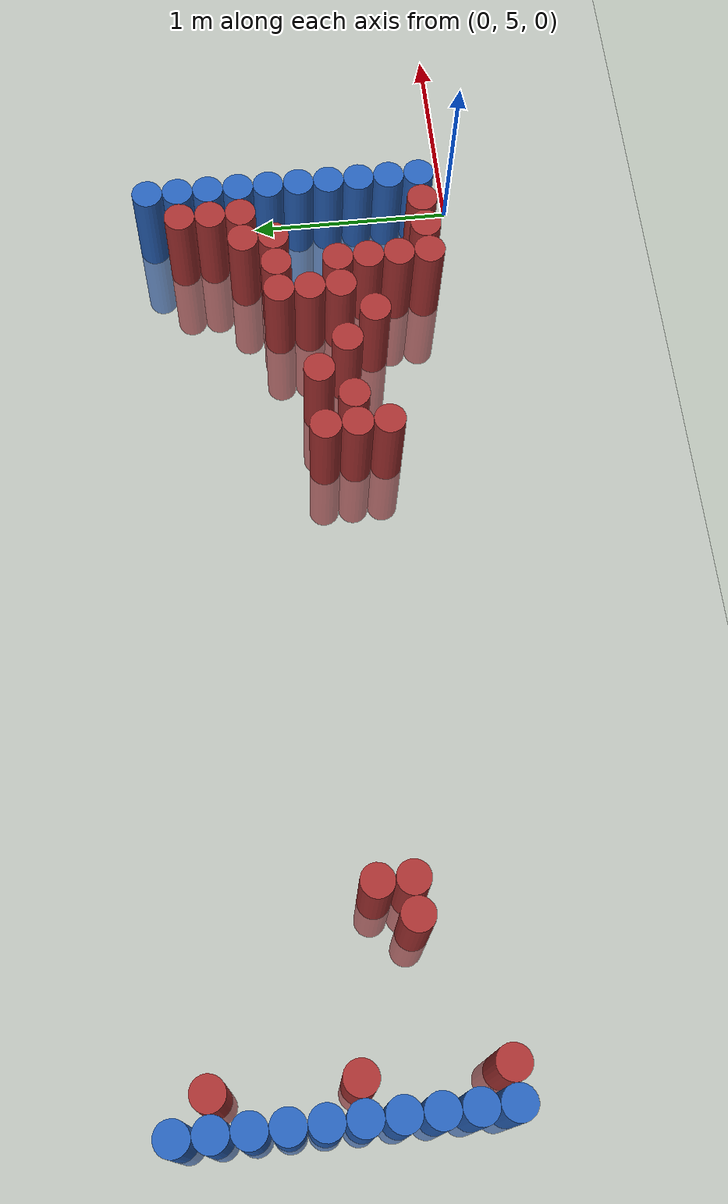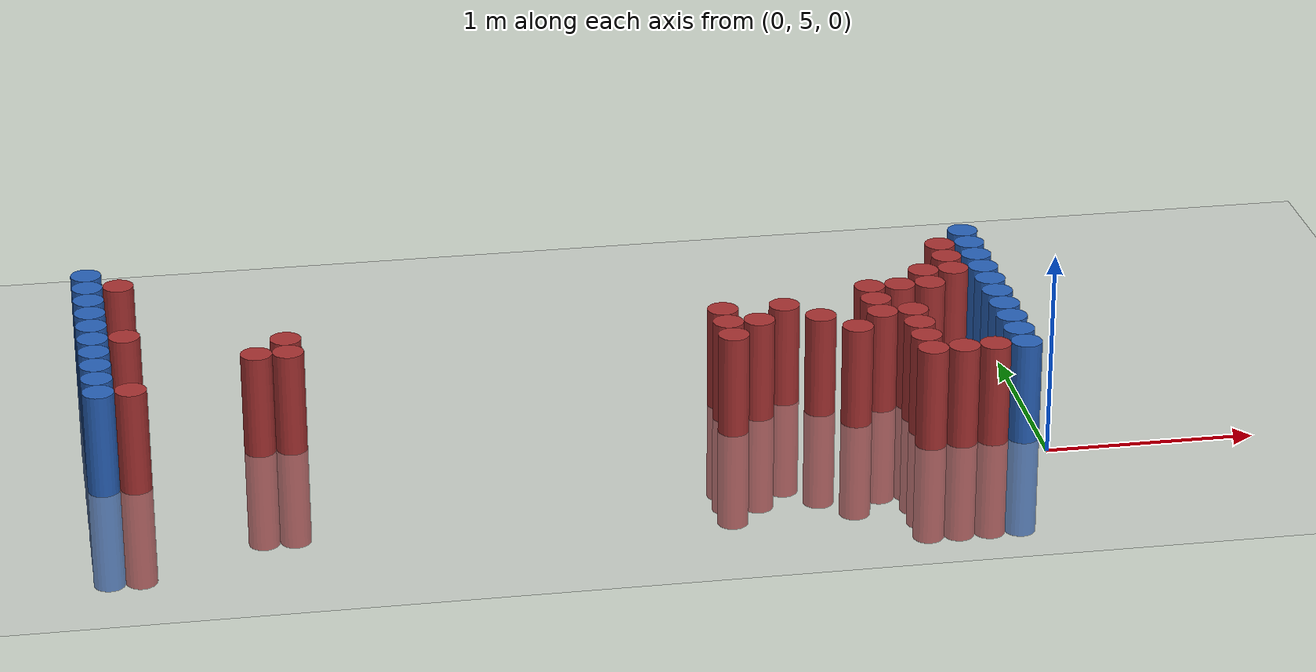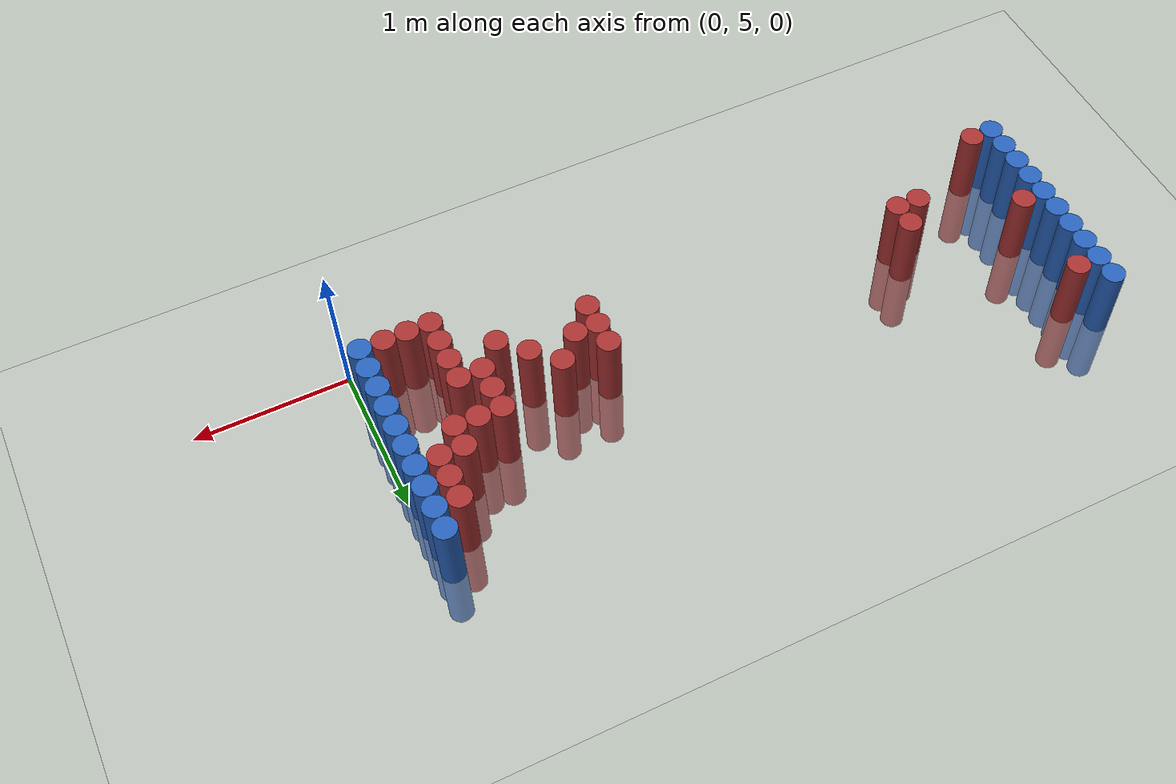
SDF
<sdf version="1.6">
 <world name="default">
  <model name="ground_plane">
   <static>1</static>
   <link name="link">
    <collision name="collision">
     <geometry><plane><normal>0 0 1</normal><size>100 100</size></plane></geometry>
     <surface><friction><ode><mu>100</mu><mu2>50</mu2></ode></friction></surface>
    </collision>
    <visual name="visual">
     <cast_shadows>0</cast_shadows>
     <geometry><plane><normal>0 0 1</normal><size>100 100</size></plane></geometry>
     <material>
      <script><uri>file://media/materials/scripts/gazebo.material</uri><name>Gazebo/Grey</name></script>
     </material>
    </visual>
   </link>
  </model>
  <model name="unit_cylinder_97">
   <static>1</static>
   <pose>-4.425000 5.325000 0.000000 0.000000 0.000000 0.000000</pose>
   <link name="link">
    <inertial>
     <mass>1</mass>
     <inertia><ixx>0.145833</ixx><ixy>0</ixy><ixz>0</ixz><iyy>0.145833</iyy><iyz>0</iyz><izz>0.125</izz></inertia>
    </inertial>
    <collision name="collision">
     <geometry><cylinder><radius>0.075000</radius><length>1</length></cylinder></geometry>
    </collision>
    <visual name="visual">
     <geometry><cylinder><radius>0.075000</radius><length>1</length></cylinder></geometry>
     <material>
      <ambient>0.152000 0.379000 0.720000 1</ambient>
      <diffuse>0.152000 0.379000 0.720000 1</diffuse>
     </material>
     <material>
      <script><name>Gazebo/Grey</name><uri>file://media/materials/scripts/gazebo.material</uri></script>
     </material>
    </visual>
   </link>
  </model>
  <model name="unit_cylinder_98">
   <static>1</static>
   <pose>-4.425000 5.475000 0.000000 0.000000 0.000000 0.000000</pose>
   <link name="link">
    <inertial>
     <mass>1</mass>
     <inertia><ixx>0.145833</ixx><ixy>0</ixy><ixz>0</ixz><iyy>0.145833</iyy><iyz>0</iyz><izz>0.125</izz></inertia>
    </inertial>
    <collision name="collision">
     <geometry><cylinder><radius>0.075000</radius><length>1</length></cylinder></geometry>
    </collision>
    <visual name="visual">
     <geometry><cylinder><radius>0.075000</radius><length>1</length></cylinder></geometry>
     <material>
      <ambient>0.152000 0.379000 0.720000 1</ambient>
      <diffuse>0.152000 0.379000 0.720000 1</diffuse>
     </material>
     <material>
      <script><name>Gazebo/Grey</name><uri>file://media/materials/scripts/gazebo.material</uri></script>
     </material>
    </visual>
   </link>
  </model>
  <model name="unit_cylinder_99">
   <static>1</static>
   <pose>-4.425000 5.625000 0.000000 0.000000 0.000000 0.000000</pose>
   <link name="link">
    <inertial>
     <mass>1</mass>
     <inertia><ixx>0.145833</ixx><ixy>0</ixy><ixz>0</ixz><iyy>0.145833</iyy><iyz>0</iyz><izz>0.125</izz></inertia>
    </inertial>
    <collision name="collision">
     <geometry><cylinder><radius>0.075000</radius><length>1</length></cylinder></geometry>
    </collision>
    <visual name="visual">
     <geometry><cylinder><radius>0.075000</radius><length>1</length></cylinder></geometry>
     <material>
      <ambient>0.152000 0.379000 0.720000 1</ambient>
      <diffuse>0.152000 0.379000 0.720000 1</diffuse>
     </material>
     <material>
      <script><name>Gazebo/Grey</name><uri>file://media/materials/scripts/gazebo.material</uri></script>
     </material>
    </visual>
   </link>
  </model>
  <model name="unit_cylinder_100">
   <static>1</static>
   <pose>-4.425000 5.775000 0.000000 0.000000 0.000000 0.000000</pose>
   <link name="link">
    <inertial>
     <mass>1</mass>
     <inertia><ixx>0.145833</ixx><ixy>0</ixy><ixz>0</ixz><iyy>0.145833</iyy><iyz>0</iyz><izz>0.125</izz></inertia>
    </inertial>
    <collision name="collision">
     <geometry><cylinder><radius>0.075000</radius><length>1</length></cylinder></geometry>
    </collision>
    <visual name="visual">
     <geometry><cylinder><radius>0.075000</radius><length>1</length></cylinder></geometry>
     <material>
      <ambient>0.152000 0.379000 0.720000 1</ambient>
      <diffuse>0.152000 0.379000 0.720000 1</diffuse>
     </material>
     <material>
      <script><name>Gazebo/Grey</name><uri>file://media/materials/scripts/gazebo.material</uri></script>
     </material>
    </visual>
   </link>
  </model>
  <model name="unit_cylinder_101">
   <static>1</static>
   <pose>-4.425000 5.925000 0.000000 0.000000 0.000000 0.000000</pose>
   <link name="link">
    <inertial>
     <mass>1</mass>
     <inertia><ixx>0.145833</ixx><ixy>0</ixy><ixz>0</ixz><iyy>0.145833</iyy><iyz>0</iyz><izz>0.125</izz></inertia>
    </inertial>
    <collision name="collision">
     <geometry><cylinder><radius>0.075000</radius><length>1</length></cylinder></geometry>
    </collision>
    <visual name="visual">
     <geometry><cylinder><radius>0.075000</radius><length>1</length></cylinder></geometry>
     <material>
      <ambient>0.152000 0.379000 0.720000 1</ambient>
      <diffuse>0.152000 0.379000 0.720000 1</diffuse>
     </material>
     <material>
      <script><name>Gazebo/Grey</name><uri>file://media/materials/scripts/gazebo.material</uri></script>
     </material>
    </visual>
   </link>
  </model>
  <model name="unit_cylinder_102">
   <static>1</static>
   <pose>-4.425000 6.075000 0.000000 0.000000 0.000000 0.000000</pose>
   <link name="link">
    <inertial>
     <mass>1</mass>
     <inertia><ixx>0.145833</ixx><ixy>0</ixy><ixz>0</ixz><iyy>0.145833</iyy><iyz>0</iyz><izz>0.125</izz></inertia>
    </inertial>
    <collision name="collision">
     <geometry><cylinder><radius>0.075000</radius><length>1</length></cylinder></geometry>
    </collision>
    <visual name="visual">
     <geometry><cylinder><radius>0.075000</radius><length>1</length></cylinder></geometry>
     <material>
      <ambient>0.152000 0.379000 0.720000 1</ambient>
      <diffuse>0.152000 0.379000 0.720000 1</diffuse>
     </material>
     <material>
      <script><name>Gazebo/Grey</name><uri>file://media/materials/scripts/gazebo.material</uri></script>
     </material>
    </visual>
   </link>
  </model>
  <model name="unit_cylinder_103">
   <static>1</static>
   <pose>-4.425000 6.225000 0.000000 0.000000 0.000000 0.000000</pose>
   <link name="link">
    <inertial>
     <mass>1</mass>
     <inertia><ixx>0.145833</ixx><ixy>0</ixy><ixz>0</ixz><iyy>0.145833</iyy><iyz>0</iyz><izz>0.125</izz></inertia>
    </inertial>
    <collision name="collision">
     <geometry><cylinder><radius>0.075000</radius><length>1</length></cylinder></geometry>
    </collision>
    <visual name="visual">
     <geometry><cylinder><radius>0.075000</radius><length>1</length></cylinder></geometry>
     <material>
      <ambient>0.152000 0.379000 0.720000 1</ambient>
      <diffuse>0.152000 0.379000 0.720000 1</diffuse>
     </material>
     <material>
      <script><name>Gazebo/Grey</name><uri>file://media/materials/scripts/gazebo.material</uri></script>
     </material>
    </visual>
   </link>
  </model>
  <model name="unit_cylinder_104">
   <static>1</static>
   <pose>-4.425000 6.375000 0.000000 0.000000 0.000000 0.000000</pose>
   <link name="link">
    <inertial>
     <mass>1</mass>
     <inertia><ixx>0.145833</ixx><ixy>0</ixy><ixz>0</ixz><iyy>0.145833</iyy><iyz>0</iyz><izz>0.125</izz></inertia>
    </inertial>
    <collision name="collision">
     <geometry><cylinder><radius>0.075000</radius><length>1</length></cylinder></geometry>
    </collision>
    <visual name="visual">
     <geometry><cylinder><radius>0.075000</radius><length>1</length></cylinder></geometry>
     <material>
      <ambient>0.152000 0.379000 0.720000 1</ambient>
      <diffuse>0.152000 0.379000 0.720000 1</diffuse>
     </material>
     <material>
      <script><name>Gazebo/Grey</name><uri>file://media/materials/scripts/gazebo.material</uri></script>
     </material>
    </visual>
   </link>
  </model>
  <model name="unit_cylinder_105">
   <static>1</static>
   <pose>-4.425000 6.525000 0.000000 0.000000 0.000000 0.000000</pose>
   <link name="link">
    <inertial>
     <mass>1</mass>
     <inertia><ixx>0.145833</ixx><ixy>0</ixy><ixz>0</ixz><iyy>0.145833</iyy><iyz>0</iyz><izz>0.125</izz></inertia>
    </inertial>
    <collision name="collision">
     <geometry><cylinder><radius>0.075000</radius><length>1</length></cylinder></geometry>
    </collision>
    <visual name="visual">
     <geometry><cylinder><radius>0.075000</radius><length>1</length></cylinder></geometry>
     <material>
      <ambient>0.152000 0.379000 0.720000 1</ambient>
      <diffuse>0.152000 0.379000 0.720000 1</diffuse>
     </material>
     <material>
      <script><name>Gazebo/Grey</name><uri>file://media/materials/scripts/gazebo.material</uri></script>
     </material>
    </visual>
   </link>
  </model>
  <model name="unit_cylinder_106">
   <static>1</static>
   <pose>-4.425000 6.675000 0.000000 0.000000 0.000000 0.000000</pose>
   <link name="link">
    <inertial>
     <mass>1</mass>
     <inertia><ixx>0.145833</ixx><ixy>0</ixy><ixz>0</ixz><iyy>0.145833</iyy><iyz>0</iyz><izz>0.125</izz></inertia>
    </inertial>
    <collision name="collision">
     <geometry><cylinder><radius>0.075000</radius><length>1</length></cylinder></geometry>
    </collision>
    <visual name="visual">
     <geometry><cylinder><radius>0.075000</radius><length>1</length></cylinder></geometry>
     <material>
      <ambient>0.152000 0.379000 0.720000 1</ambient>
      <diffuse>0.152000 0.379000 0.720000 1</diffuse>
     </material>
     <material>
      <script><name>Gazebo/Grey</name><uri>file://media/materials/scripts/gazebo.material</uri></script>
     </material>
    </visual>
   </link>
  </model>
  <model name="unit_cylinder_126">
   <static>1</static>
   <pose>-4.275000 5.325000 0.000000 0.000000 0.000000 0.000000</pose>
   <link name="link">
    <inertial>
     <mass>1</mass>
     <inertia><ixx>0.145833</ixx><ixy>0</ixy><ixz>0</ixz><iyy>0.145833</iyy><iyz>0</iyz><izz>0.125</izz></inertia>
    </inertial>
    <collision name="collision">
     <geometry><cylinder><radius>0.075000</radius><length>1</length></cylinder></geometry>
    </collision>
    <visual name="visual">
     <geometry><cylinder><radius>0.075000</radius><length>1</length></cylinder></geometry>
     <material>
      <ambient>0.648000 0.192000 0.192000 1</ambient>
      <diffuse>0.648000 0.192000 0.192000 1</diffuse>
     </material>
     <material>
      <script><name>Gazebo/Grey</name><uri>file://media/materials/scripts/gazebo.material</uri></script>
     </material>
    </visual>
   </link>
  </model>
  <model name="unit_cylinder_127">
   <static>1</static>
   <pose>-4.275000 5.925000 0.000000 0.000000 0.000000 0.000000</pose>
   <link name="link">
    <inertial>
     <mass>1</mass>
     <inertia><ixx>0.145833</ixx><ixy>0</ixy><ixz>0</ixz><iyy>0.145833</iyy><iyz>0</iyz><izz>0.125</izz></inertia>
    </inertial>
    <collision name="collision">
     <geometry><cylinder><radius>0.075000</radius><length>1</length></cylinder></geometry>
    </collision>
    <visual name="visual">
     <geometry><cylinder><radius>0.075000</radius><length>1</length></cylinder></geometry>
     <material>
      <ambient>0.648000 0.192000 0.192000 1</ambient>
      <diffuse>0.648000 0.192000 0.192000 1</diffuse>
     </material>
     <material>
      <script><name>Gazebo/Grey</name><uri>file://media/materials/scripts/gazebo.material</uri></script>
     </material>
    </visual>
   </link>
  </model>
  <model name="unit_cylinder_128">
   <static>1</static>
   <pose>-4.275000 6.525000 0.000000 0.000000 0.000000 0.000000</pose>
   <link name="link">
    <inertial>
     <mass>1</mass>
     <inertia><ixx>0.145833</ixx><ixy>0</ixy><ixz>0</ixz><iyy>0.145833</iyy><iyz>0</iyz><izz>0.125</izz></inertia>
    </inertial>
    <collision name="collision">
     <geometry><cylinder><radius>0.075000</radius><length>1</length></cylinder></geometry>
    </collision>
    <visual name="visual">
     <geometry><cylinder><radius>0.075000</radius><length>1</length></cylinder></geometry>
     <material>
      <ambient>0.648000 0.192000 0.192000 1</ambient>
      <diffuse>0.648000 0.192000 0.192000 1</diffuse>
     </material>
     <material>
      <script><name>Gazebo/Grey</name><uri>file://media/materials/scripts/gazebo.material</uri></script>
     </material>
    </visual>
   </link>
  </model>
  <model name="unit_cylinder_164">
   <static>1</static>
   <pose>-3.675000 5.625000 0.000000 0.000000 0.000000 0.000000</pose>
   <link name="link">
    <inertial>
     <mass>1</mass>
     <inertia><ixx>0.145833</ixx><ixy>0</ixy><ixz>0</ixz><iyy>0.145833</iyy><iyz>0</iyz><izz>0.125</izz></inertia>
    </inertial>
    <collision name="collision">
     <geometry><cylinder><radius>0.075000</radius><length>1</length></cylinder></geometry>
    </collision>
    <visual name="visual">
     <geometry><cylinder><radius>0.075000</radius><length>1</length></cylinder></geometry>
     <material>
      <ambient>0.648000 0.192000 0.192000 1</ambient>
      <diffuse>0.648000 0.192000 0.192000 1</diffuse>
     </material>
     <material>
      <script><name>Gazebo/Grey</name><uri>file://media/materials/scripts/gazebo.material</uri></script>
     </material>
    </visual>
   </link>
  </model>
  <model name="unit_cylinder_171">
   <static>1</static>
   <pose>-3.525000 5.625000 0.000000 0.000000 0.000000 0.000000</pose>
   <link name="link">
    <inertial>
     <mass>1</mass>
     <inertia><ixx>0.145833</ixx><ixy>0</ixy><ixz>0</ixz><iyy>0.145833</iyy><iyz>0</iyz><izz>0.125</izz></inertia>
    </inertial>
    <collision name="collision">
     <geometry><cylinder><radius>0.075000</radius><length>1</length></cylinder></geometry>
    </collision>
    <visual name="visual">
     <geometry><cylinder><radius>0.075000</radius><length>1</length></cylinder></geometry>
     <material>
      <ambient>0.648000 0.192000 0.192000 1</ambient>
      <diffuse>0.648000 0.192000 0.192000 1</diffuse>
     </material>
     <material>
      <script><name>Gazebo/Grey</name><uri>file://media/materials/scripts/gazebo.material</uri></script>
     </material>
    </visual>
   </link>
  </model>
  <model name="unit_cylinder_172">
   <static>1</static>
   <pose>-3.525000 5.775000 0.000000 0.000000 0.000000 0.000000</pose>
   <link name="link">
    <inertial>
     <mass>1</mass>
     <inertia><ixx>0.145833</ixx><ixy>0</ixy><ixz>0</ixz><iyy>0.145833</iyy><iyz>0</iyz><izz>0.125</izz></inertia>
    </inertial>
    <collision name="collision">
     <geometry><cylinder><radius>0.075000</radius><length>1</length></cylinder></geometry>
    </collision>
    <visual name="visual">
     <geometry><cylinder><radius>0.075000</radius><length>1</length></cylinder></geometry>
     <material>
      <ambient>0.648000 0.192000 0.192000 1</ambient>
      <diffuse>0.648000 0.192000 0.192000 1</diffuse>
     </material>
     <material>
      <script><name>Gazebo/Grey</name><uri>file://media/materials/scripts/gazebo.material</uri></script>
     </material>
    </visual>
   </link>
  </model>
  <model name="unit_cylinder_201">
   <static>1</static>
   <pose>-1.425000 5.475000 0.000000 0.000000 0.000000 0.000000</pose>
   <link name="link">
    <inertial>
     <mass>1</mass>
     <inertia><ixx>0.145833</ixx><ixy>0</ixy><ixz>0</ixz><iyy>0.145833</iyy><iyz>0</iyz><izz>0.125</izz></inertia>
    </inertial>
    <collision name="collision">
     <geometry><cylinder><radius>0.075000</radius><length>1</length></cylinder></geometry>
    </collision>
    <visual name="visual">
     <geometry><cylinder><radius>0.075000</radius><length>1</length></cylinder></geometry>
     <material>
      <ambient>0.648000 0.192000 0.192000 1</ambient>
      <diffuse>0.648000 0.192000 0.192000 1</diffuse>
     </material>
     <material>
      <script><name>Gazebo/Grey</name><uri>file://media/materials/scripts/gazebo.material</uri></script>
     </material>
    </visual>
   </link>
  </model>
  <model name="unit_cylinder_202">
   <static>1</static>
   <pose>-1.425000 5.625000 0.000000 0.000000 0.000000 0.000000</pose>
   <link name="link">
    <inertial>
     <mass>1</mass>
     <inertia><ixx>0.145833</ixx><ixy>0</ixy><ixz>0</ixz><iyy>0.145833</iyy><iyz>0</iyz><izz>0.125</izz></inertia>
    </inertial>
    <collision name="collision">
     <geometry><cylinder><radius>0.075000</radius><length>1</length></cylinder></geometry>
    </collision>
    <visual name="visual">
     <geometry><cylinder><radius>0.075000</radius><length>1</length></cylinder></geometry>
     <material>
      <ambient>0.648000 0.192000 0.192000 1</ambient>
      <diffuse>0.648000 0.192000 0.192000 1</diffuse>
     </material>
     <material>
      <script><name>Gazebo/Grey</name><uri>file://media/materials/scripts/gazebo.material</uri></script>
     </material>
    </visual>
   </link>
  </model>
  <model name="unit_cylinder_203">
   <static>1</static>
   <pose>-1.425000 5.775000 0.000000 0.000000 0.000000 0.000000</pose>
   <link name="link">
    <inertial>
     <mass>1</mass>
     <inertia><ixx>0.145833</ixx><ixy>0</ixy><ixz>0</ixz><iyy>0.145833</iyy><iyz>0</iyz><izz>0.125</izz></inertia>
    </inertial>
    <collision name="collision">
     <geometry><cylinder><radius>0.075000</radius><length>1</length></cylinder></geometry>
    </collision>
    <visual name="visual">
     <geometry><cylinder><radius>0.075000</radius><length>1</length></cylinder></geometry>
     <material>
      <ambient>0.648000 0.192000 0.192000 1</ambient>
      <diffuse>0.648000 0.192000 0.192000 1</diffuse>
     </material>
     <material>
      <script><name>Gazebo/Grey</name><uri>file://media/materials/scripts/gazebo.material</uri></script>
     </material>
    </visual>
   </link>
  </model>
  <model name="unit_cylinder_205">
   <static>1</static>
   <pose>-1.275000 5.625000 0.000000 0.000000 0.000000 0.000000</pose>
   <link name="link">
    <inertial>
     <mass>1</mass>
     <inertia><ixx>0.145833</ixx><ixy>0</ixy><ixz>0</ixz><iyy>0.145833</iyy><iyz>0</iyz><izz>0.125</izz></inertia>
    </inertial>
    <collision name="collision">
     <geometry><cylinder><radius>0.075000</radius><length>1</length></cylinder></geometry>
    </collision>
    <visual name="visual">
     <geometry><cylinder><radius>0.075000</radius><length>1</length></cylinder></geometry>
     <material>
      <ambient>0.648000 0.192000 0.192000 1</ambient>
      <diffuse>0.648000 0.192000 0.192000 1</diffuse>
     </material>
     <material>
      <script><name>Gazebo/Grey</name><uri>file://media/materials/scripts/gazebo.material</uri></script>
     </material>
    </visual>
   </link>
  </model>
  <model name="unit_cylinder_208">
   <static>1</static>
   <pose>-1.125000 5.775000 0.000000 0.000000 0.000000 0.000000</pose>
   <link name="link">
    <inertial>
     <mass>1</mass>
     <inertia><ixx>0.145833</ixx><ixy>0</ixy><ixz>0</ixz><iyy>0.145833</iyy><iyz>0</iyz><izz>0.125</izz></inertia>
    </inertial>
    <collision name="collision">
     <geometry><cylinder><radius>0.075000</radius><length>1</length></cylinder></geometry>
    </collision>
    <visual name="visual">
     <geometry><cylinder><radius>0.075000</radius><length>1</length></cylinder></geometry>
     <material>
      <ambient>0.648000 0.192000 0.192000 1</ambient>
      <diffuse>0.648000 0.192000 0.192000 1</diffuse>
     </material>
     <material>
      <script><name>Gazebo/Grey</name><uri>file://media/materials/scripts/gazebo.material</uri></script>
     </material>
    </visual>
   </link>
  </model>
  <model name="unit_cylinder_212">
   <static>1</static>
   <pose>-0.975000 5.625000 0.000000 0.000000 0.000000 0.000000</pose>
   <link name="link">
    <inertial>
     <mass>1</mass>
     <inertia><ixx>0.145833</ixx><ixy>0</ixy><ixz>0</ixz><iyy>0.145833</iyy><iyz>0</iyz><izz>0.125</izz></inertia>
    </inertial>
    <collision name="collision">
     <geometry><cylinder><radius>0.075000</radius><length>1</length></cylinder></geometry>
    </collision>
    <visual name="visual">
     <geometry><cylinder><radius>0.075000</radius><length>1</length></cylinder></geometry>
     <material>
      <ambient>0.648000 0.192000 0.192000 1</ambient>
      <diffuse>0.648000 0.192000 0.192000 1</diffuse>
     </material>
     <material>
      <script><name>Gazebo/Grey</name><uri>file://media/materials/scripts/gazebo.material</uri></script>
     </material>
    </visual>
   </link>
  </model>
  <model name="unit_cylinder_216">
   <static>1</static>
   <pose>-0.825000 5.475000 0.000000 0.000000 0.000000 0.000000</pose>
   <link name="link">
    <inertial>
     <mass>1</mass>
     <inertia><ixx>0.145833</ixx><ixy>0</ixy><ixz>0</ixz><iyy>0.145833</iyy><iyz>0</iyz><izz>0.125</izz></inertia>
    </inertial>
    <collision name="collision">
     <geometry><cylinder><radius>0.075000</radius><length>1</length></cylinder></geometry>
    </collision>
    <visual name="visual">
     <geometry><cylinder><radius>0.075000</radius><length>1</length></cylinder></geometry>
     <material>
      <ambient>0.648000 0.192000 0.192000 1</ambient>
      <diffuse>0.648000 0.192000 0.192000 1</diffuse>
     </material>
     <material>
      <script><name>Gazebo/Grey</name><uri>file://media/materials/scripts/gazebo.material</uri></script>
     </material>
    </visual>
   </link>
  </model>
  <model name="unit_cylinder_219">
   <static>1</static>
   <pose>-0.675000 5.625000 0.000000 0.000000 0.000000 0.000000</pose>
   <link name="link">
    <inertial>
     <mass>1</mass>
     <inertia><ixx>0.145833</ixx><ixy>0</ixy><ixz>0</ixz><iyy>0.145833</iyy><iyz>0</iyz><izz>0.125</izz></inertia>
    </inertial>
    <collision name="collision">
     <geometry><cylinder><radius>0.075000</radius><length>1</length></cylinder></geometry>
    </collision>
    <visual name="visual">
     <geometry><cylinder><radius>0.075000</radius><length>1</length></cylinder></geometry>
     <material>
      <ambient>0.648000 0.192000 0.192000 1</ambient>
      <diffuse>0.648000 0.192000 0.192000 1</diffuse>
     </material>
     <material>
      <script><name>Gazebo/Grey</name><uri>file://media/materials/scripts/gazebo.material</uri></script>
     </material>
    </visual>
   </link>
  </model>
  <model name="unit_cylinder_220">
   <static>1</static>
   <pose>-0.675000 5.775000 0.000000 0.000000 0.000000 0.000000</pose>
   <link name="link">
    <inertial>
     <mass>1</mass>
     <inertia><ixx>0.145833</ixx><ixy>0</ixy><ixz>0</ixz><iyy>0.145833</iyy><iyz>0</iyz><izz>0.125</izz></inertia>
    </inertial>
    <collision name="collision">
     <geometry><cylinder><radius>0.075000</radius><length>1</length></cylinder></geometry>
    </collision>
    <visual name="visual">
     <geometry><cylinder><radius>0.075000</radius><length>1</length></cylinder></geometry>
     <material>
      <ambient>0.648000 0.192000 0.192000 1</ambient>
      <diffuse>0.648000 0.192000 0.192000 1</diffuse>
     </material>
     <material>
      <script><name>Gazebo/Grey</name><uri>file://media/materials/scripts/gazebo.material</uri></script>
     </material>
    </visual>
   </link>
  </model>
  <model name="unit_cylinder_221">
   <static>1</static>
   <pose>-0.675000 5.925000 0.000000 0.000000 0.000000 0.000000</pose>
   <link name="link">
    <inertial>
     <mass>1</mass>
     <inertia><ixx>0.145833</ixx><ixy>0</ixy><ixz>0</ixz><iyy>0.145833</iyy><iyz>0</iyz><izz>0.125</izz></inertia>
    </inertial>
    <collision name="collision">
     <geometry><cylinder><radius>0.075000</radius><length>1</length></cylinder></geometry>
    </collision>
    <visual name="visual">
     <geometry><cylinder><radius>0.075000</radius><length>1</length></cylinder></geometry>
     <material>
      <ambient>0.648000 0.192000 0.192000 1</ambient>
      <diffuse>0.648000 0.192000 0.192000 1</diffuse>
     </material>
     <material>
      <script><name>Gazebo/Grey</name><uri>file://media/materials/scripts/gazebo.material</uri></script>
     </material>
    </visual>
   </link>
  </model>
  <model name="unit_cylinder_224">
   <static>1</static>
   <pose>-0.525000 5.175000 0.000000 0.000000 0.000000 0.000000</pose>
   <link name="link">
    <inertial>
     <mass>1</mass>
     <inertia><ixx>0.145833</ixx><ixy>0</ixy><ixz>0</ixz><iyy>0.145833</iyy><iyz>0</iyz><izz>0.125</izz></inertia>
    </inertial>
    <collision name="collision">
     <geometry><cylinder><radius>0.075000</radius><length>1</length></cylinder></geometry>
    </collision>
    <visual name="visual">
     <geometry><cylinder><radius>0.075000</radius><length>1</length></cylinder></geometry>
     <material>
      <ambient>0.648000 0.192000 0.192000 1</ambient>
      <diffuse>0.648000 0.192000 0.192000 1</diffuse>
     </material>
     <material>
      <script><name>Gazebo/Grey</name><uri>file://media/materials/scripts/gazebo.material</uri></script>
     </material>
    </visual>
   </link>
  </model>
  <model name="unit_cylinder_225">
   <static>1</static>
   <pose>-0.525000 5.325000 0.000000 0.000000 0.000000 0.000000</pose>
   <link name="link">
    <inertial>
     <mass>1</mass>
     <inertia><ixx>0.145833</ixx><ixy>0</ixy><ixz>0</ixz><iyy>0.145833</iyy><iyz>0</iyz><izz>0.125</izz></inertia>
    </inertial>
    <collision name="collision">
     <geometry><cylinder><radius>0.075000</radius><length>1</length></cylinder></geometry>
    </collision>
    <visual name="visual">
     <geometry><cylinder><radius>0.075000</radius><length>1</length></cylinder></geometry>
     <material>
      <ambient>0.648000 0.192000 0.192000 1</ambient>
      <diffuse>0.648000 0.192000 0.192000 1</diffuse>
     </material>
     <material>
      <script><name>Gazebo/Grey</name><uri>file://media/materials/scripts/gazebo.material</uri></script>
     </material>
    </visual>
   </link>
  </model>
  <model name="unit_cylinder_226">
   <static>1</static>
   <pose>-0.525000 5.475000 0.000000 0.000000 0.000000 0.000000</pose>
   <link name="link">
    <inertial>
     <mass>1</mass>
     <inertia><ixx>0.145833</ixx><ixy>0</ixy><ixz>0</ixz><iyy>0.145833</iyy><iyz>0</iyz><izz>0.125</izz></inertia>
    </inertial>
    <collision name="collision">
     <geometry><cylinder><radius>0.075000</radius><length>1</length></cylinder></geometry>
    </collision>
    <visual name="visual">
     <geometry><cylinder><radius>0.075000</radius><length>1</length></cylinder></geometry>
     <material>
      <ambient>0.648000 0.192000 0.192000 1</ambient>
      <diffuse>0.648000 0.192000 0.192000 1</diffuse>
     </material>
     <material>
      <script><name>Gazebo/Grey</name><uri>file://media/materials/scripts/gazebo.material</uri></script>
     </material>
    </visual>
   </link>
  </model>
  <model name="unit_cylinder_227">
   <static>1</static>
   <pose>-0.525000 5.625000 0.000000 0.000000 0.000000 0.000000</pose>
   <link name="link">
    <inertial>
     <mass>1</mass>
     <inertia><ixx>0.145833</ixx><ixy>0</ixy><ixz>0</ixz><iyy>0.145833</iyy><iyz>0</iyz><izz>0.125</izz></inertia>
    </inertial>
    <collision name="collision">
     <geometry><cylinder><radius>0.075000</radius><length>1</length></cylinder></geometry>
    </collision>
    <visual name="visual">
     <geometry><cylinder><radius>0.075000</radius><length>1</length></cylinder></geometry>
     <material>
      <ambient>0.648000 0.192000 0.192000 1</ambient>
      <diffuse>0.648000 0.192000 0.192000 1</diffuse>
     </material>
     <material>
      <script><name>Gazebo/Grey</name><uri>file://media/materials/scripts/gazebo.material</uri></script>
     </material>
    </visual>
   </link>
  </model>
  <model name="unit_cylinder_228">
   <static>1</static>
   <pose>-0.525000 5.925000 0.000000 0.000000 0.000000 0.000000</pose>
   <link name="link">
    <inertial>
     <mass>1</mass>
     <inertia><ixx>0.145833</ixx><ixy>0</ixy><ixz>0</ixz><iyy>0.145833</iyy><iyz>0</iyz><izz>0.125</izz></inertia>
    </inertial>
    <collision name="collision">
     <geometry><cylinder><radius>0.075000</radius><length>1</length></cylinder></geometry>
    </collision>
    <visual name="visual">
     <geometry><cylinder><radius>0.075000</radius><length>1</length></cylinder></geometry>
     <material>
      <ambient>0.648000 0.192000 0.192000 1</ambient>
      <diffuse>0.648000 0.192000 0.192000 1</diffuse>
     </material>
     <material>
      <script><name>Gazebo/Grey</name><uri>file://media/materials/scripts/gazebo.material</uri></script>
     </material>
    </visual>
   </link>
  </model>
  <model name="unit_cylinder_235">
   <static>1</static>
   <pose>-0.375000 5.175000 0.000000 0.000000 0.000000 0.000000</pose>
   <link name="link">
    <inertial>
     <mass>1</mass>
     <inertia><ixx>0.145833</ixx><ixy>0</ixy><ixz>0</ixz><iyy>0.145833</iyy><iyz>0</iyz><izz>0.125</izz></inertia>
    </inertial>
    <collision name="collision">
     <geometry><cylinder><radius>0.075000</radius><length>1</length></cylinder></geometry>
    </collision>
    <visual name="visual">
     <geometry><cylinder><radius>0.075000</radius><length>1</length></cylinder></geometry>
     <material>
      <ambient>0.648000 0.192000 0.192000 1</ambient>
      <diffuse>0.648000 0.192000 0.192000 1</diffuse>
     </material>
     <material>
      <script><name>Gazebo/Grey</name><uri>file://media/materials/scripts/gazebo.material</uri></script>
     </material>
    </visual>
   </link>
  </model>
  <model name="unit_cylinder_236">
   <static>1</static>
   <pose>-0.375000 5.925000 0.000000 0.000000 0.000000 0.000000</pose>
   <link name="link">
    <inertial>
     <mass>1</mass>
     <inertia><ixx>0.145833</ixx><ixy>0</ixy><ixz>0</ixz><iyy>0.145833</iyy><iyz>0</iyz><izz>0.125</izz></inertia>
    </inertial>
    <collision name="collision">
     <geometry><cylinder><radius>0.075000</radius><length>1</length></cylinder></geometry>
    </collision>
    <visual name="visual">
     <geometry><cylinder><radius>0.075000</radius><length>1</length></cylinder></geometry>
     <material>
      <ambient>0.648000 0.192000 0.192000 1</ambient>
      <diffuse>0.648000 0.192000 0.192000 1</diffuse>
     </material>
     <material>
      <script><name>Gazebo/Grey</name><uri>file://media/materials/scripts/gazebo.material</uri></script>
     </material>
    </visual>
   </link>
  </model>
  <model name="unit_cylinder_237">
   <static>1</static>
   <pose>-0.375000 6.075000 0.000000 0.000000 0.000000 0.000000</pose>
   <link name="link">
    <inertial>
     <mass>1</mass>
     <inertia><ixx>0.145833</ixx><ixy>0</ixy><ixz>0</ixz><iyy>0.145833</iyy><iyz>0</iyz><izz>0.125</izz></inertia>
    </inertial>
    <collision name="collision">
     <geometry><cylinder><radius>0.075000</radius><length>1</length></cylinder></geometry>
    </collision>
    <visual name="visual">
     <geometry><cylinder><radius>0.075000</radius><length>1</length></cylinder></geometry>
     <material>
      <ambient>0.648000 0.192000 0.192000 1</ambient>
      <diffuse>0.648000 0.192000 0.192000 1</diffuse>
     </material>
     <material>
      <script><name>Gazebo/Grey</name><uri>file://media/materials/scripts/gazebo.material</uri></script>
     </material>
    </visual>
   </link>
  </model>
  <model name="unit_cylinder_251">
   <static>1</static>
   <pose>-0.225000 5.175000 0.000000 0.000000 0.000000 0.000000</pose>
   <link name="link">
    <inertial>
     <mass>1</mass>
     <inertia><ixx>0.145833</ixx><ixy>0</ixy><ixz>0</ixz><iyy>0.145833</iyy><iyz>0</iyz><izz>0.125</izz></inertia>
    </inertial>
    <collision name="collision">
     <geometry><cylinder><radius>0.075000</radius><length>1</length></cylinder></geometry>
    </collision>
    <visual name="visual">
     <geometry><cylinder><radius>0.075000</radius><length>1</length></cylinder></geometry>
     <material>
      <ambient>0.648000 0.192000 0.192000 1</ambient>
      <diffuse>0.648000 0.192000 0.192000 1</diffuse>
     </material>
     <material>
      <script><name>Gazebo/Grey</name><uri>file://media/materials/scripts/gazebo.material</uri></script>
     </material>
    </visual>
   </link>
  </model>
  <model name="unit_cylinder_252">
   <static>1</static>
   <pose>-0.225000 6.075000 0.000000 0.000000 0.000000 0.000000</pose>
   <link name="link">
    <inertial>
     <mass>1</mass>
     <inertia><ixx>0.145833</ixx><ixy>0</ixy><ixz>0</ixz><iyy>0.145833</iyy><iyz>0</iyz><izz>0.125</izz></inertia>
    </inertial>
    <collision name="collision">
     <geometry><cylinder><radius>0.075000</radius><length>1</length></cylinder></geometry>
    </collision>
    <visual name="visual">
     <geometry><cylinder><radius>0.075000</radius><length>1</length></cylinder></geometry>
     <material>
      <ambient>0.648000 0.192000 0.192000 1</ambient>
      <diffuse>0.648000 0.192000 0.192000 1</diffuse>
     </material>
     <material>
      <script><name>Gazebo/Grey</name><uri>file://media/materials/scripts/gazebo.material</uri></script>
     </material>
    </visual>
   </link>
  </model>
  <model name="unit_cylinder_253">
   <static>1</static>
   <pose>-0.225000 6.225000 0.000000 0.000000 0.000000 0.000000</pose>
   <link name="link">
    <inertial>
     <mass>1</mass>
     <inertia><ixx>0.145833</ixx><ixy>0</ixy><ixz>0</ixz><iyy>0.145833</iyy><iyz>0</iyz><izz>0.125</izz></inertia>
    </inertial>
    <collision name="collision">
     <geometry><cylinder><radius>0.075000</radius><length>1</length></cylinder></geometry>
    </collision>
    <visual name="visual">
     <geometry><cylinder><radius>0.075000</radius><length>1</length></cylinder></geometry>
     <material>
      <ambient>0.648000 0.192000 0.192000 1</ambient>
      <diffuse>0.648000 0.192000 0.192000 1</diffuse>
     </material>
     <material>
      <script><name>Gazebo/Grey</name><uri>file://media/materials/scripts/gazebo.material</uri></script>
     </material>
    </visual>
   </link>
  </model>
  <model name="unit_cylinder_254">
   <static>1</static>
   <pose>-0.225000 6.375000 0.000000 0.000000 0.000000 0.000000</pose>
   <link name="link">
    <inertial>
     <mass>1</mass>
     <inertia><ixx>0.145833</ixx><ixy>0</ixy><ixz>0</ixz><iyy>0.145833</iyy><iyz>0</iyz><izz>0.125</izz></inertia>
    </inertial>
    <collision name="collision">
     <geometry><cylinder><radius>0.075000</radius><length>1</length></cylinder></geometry>
    </collision>
    <visual name="visual">
     <geometry><cylinder><radius>0.075000</radius><length>1</length></cylinder></geometry>
     <material>
      <ambient>0.648000 0.192000 0.192000 1</ambient>
      <diffuse>0.648000 0.192000 0.192000 1</diffuse>
     </material>
     <material>
      <script><name>Gazebo/Grey</name><uri>file://media/materials/scripts/gazebo.material</uri></script>
     </material>
    </visual>
   </link>
  </model>
  <model name="unit_cylinder_261">
   <static>1</static>
   <pose>-0.075000 5.175000 0.000000 0.000000 0.000000 0.000000</pose>
   <link name="link">
    <inertial>
     <mass>1</mass>
     <inertia><ixx>0.145833</ixx><ixy>0</ixy><ixz>0</ixz><iyy>0.145833</iyy><iyz>0</iyz><izz>0.125</izz></inertia>
    </inertial>
    <collision name="collision">
     <geometry><cylinder><radius>0.075000</radius><length>1</length></cylinder></geometry>
    </collision>
    <visual name="visual">
     <geometry><cylinder><radius>0.075000</radius><length>1</length></cylinder></geometry>
     <material>
      <ambient>0.152000 0.379000 0.720000 1</ambient>
      <diffuse>0.152000 0.379000 0.720000 1</diffuse>
     </material>
     <material>
      <script><name>Gazebo/Grey</name><uri>file://media/materials/scripts/gazebo.material</uri></script>
     </material>
    </visual>
   </link>
  </model>
  <model name="unit_cylinder_262">
   <static>1</static>
   <pose>-0.075000 5.325000 0.000000 0.000000 0.000000 0.000000</pose>
   <link name="link">
    <inertial>
     <mass>1</mass>
     <inertia><ixx>0.145833</ixx><ixy>0</ixy><ixz>0</ixz><iyy>0.145833</iyy><iyz>0</iyz><izz>0.125</izz></inertia>
    </inertial>
    <collision name="collision">
     <geometry><cylinder><radius>0.075000</radius><length>1</length></cylinder></geometry>
    </collision>
    <visual name="visual">
     <geometry><cylinder><radius>0.075000</radius><length>1</length></cylinder></geometry>
     <material>
      <ambient>0.152000 0.379000 0.720000 1</ambient>
      <diffuse>0.152000 0.379000 0.720000 1</diffuse>
     </material>
     <material>
      <script><name>Gazebo/Grey</name><uri>file://media/materials/scripts/gazebo.material</uri></script>
     </material>
    </visual>
   </link>
  </model>
  <model name="unit_cylinder_263">
   <static>1</static>
   <pose>-0.075000 5.475000 0.000000 0.000000 0.000000 0.000000</pose>
   <link name="link">
    <inertial>
     <mass>1</mass>
     <inertia><ixx>0.145833</ixx><ixy>0</ixy><ixz>0</ixz><iyy>0.145833</iyy><iyz>0</iyz><izz>0.125</izz></inertia>
    </inertial>
    <collision name="collision">
     <geometry><cylinder><radius>0.075000</radius><length>1</length></cylinder></geometry>
    </collision>
    <visual name="visual">
     <geometry><cylinder><radius>0.075000</radius><length>1</length></cylinder></geometry>
     <material>
      <ambient>0.152000 0.379000 0.720000 1</ambient>
      <diffuse>0.152000 0.379000 0.720000 1</diffuse>
     </material>
     <material>
      <script><name>Gazebo/Grey</name><uri>file://media/materials/scripts/gazebo.material</uri></script>
     </material>
    </visual>
   </link>
  </model>
  <model name="unit_cylinder_264">
   <static>1</static>
   <pose>-0.075000 5.625000 0.000000 0.000000 0.000000 0.000000</pose>
   <link name="link">
    <inertial>
     <mass>1</mass>
     <inertia><ixx>0.145833</ixx><ixy>0</ixy><ixz>0</ixz><iyy>0.145833</iyy><iyz>0</iyz><izz>0.125</izz></inertia>
    </inertial>
    <collision name="collision">
     <geometry><cylinder><radius>0.075000</radius><length>1</length></cylinder></geometry>
    </collision>
    <visual name="visual">
     <geometry><cylinder><radius>0.075000</radius><length>1</length></cylinder></geometry>
     <material>
      <ambient>0.152000 0.379000 0.720000 1</ambient>
      <diffuse>0.152000 0.379000 0.720000 1</diffuse>
     </material>
     <material>
      <script><name>Gazebo/Grey</name><uri>file://media/materials/scripts/gazebo.material</uri></script>
     </material>
    </visual>
   </link>
  </model>
  <model name="unit_cylinder_265">
   <static>1</static>
   <pose>-0.075000 5.775000 0.000000 0.000000 0.000000 0.000000</pose>
   <link name="link">
    <inertial>
     <mass>1</mass>
     <inertia><ixx>0.145833</ixx><ixy>0</ixy><ixz>0</ixz><iyy>0.145833</iyy><iyz>0</iyz><izz>0.125</izz></inertia>
    </inertial>
    <collision name="collision">
     <geometry><cylinder><radius>0.075000</radius><length>1</length></cylinder></geometry>
    </collision>
    <visual name="visual">
     <geometry><cylinder><radius>0.075000</radius><length>1</length></cylinder></geometry>
     <material>
      <ambient>0.152000 0.379000 0.720000 1</ambient>
      <diffuse>0.152000 0.379000 0.720000 1</diffuse>
     </material>
     <material>
      <script><name>Gazebo/Grey</name><uri>file://media/materials/scripts/gazebo.material</uri></script>
     </material>
    </visual>
   </link>
  </model>
  <model name="unit_cylinder_266">
   <static>1</static>
   <pose>-0.075000 5.925000 0.000000 0.000000 0.000000 0.000000</pose>
   <link name="link">
    <inertial>
     <mass>1</mass>
     <inertia><ixx>0.145833</ixx><ixy>0</ixy><ixz>0</ixz><iyy>0.145833</iyy><iyz>0</iyz><izz>0.125</izz></inertia>
    </inertial>
    <collision name="collision">
     <geometry><cylinder><radius>0.075000</radius><length>1</length></cylinder></geometry>
    </collision>
    <visual name="visual">
     <geometry><cylinder><radius>0.075000</radius><length>1</length></cylinder></geometry>
     <material>
      <ambient>0.152000 0.379000 0.720000 1</ambient>
      <diffuse>0.152000 0.379000 0.720000 1</diffuse>
     </material>
     <material>
      <script><name>Gazebo/Grey</name><uri>file://media/materials/scripts/gazebo.material</uri></script>
     </material>
    </visual>
   </link>
  </model>
  <model name="unit_cylinder_267">
   <static>1</static>
   <pose>-0.075000 6.075000 0.000000 0.000000 0.000000 0.000000</pose>
   <link name="link">
    <inertial>
     <mass>1</mass>
     <inertia><ixx>0.145833</ixx><ixy>0</ixy><ixz>0</ixz><iyy>0.145833</iyy><iyz>0</iyz><izz>0.125</izz></inertia>
    </inertial>
    <collision name="collision">
     <geometry><cylinder><radius>0.075000</radius><length>1</length></cylinder></geometry>
    </collision>
    <visual name="visual">
     <geometry><cylinder><radius>0.075000</radius><length>1</length></cylinder></geometry>
     <material>
      <ambient>0.152000 0.379000 0.720000 1</ambient>
      <diffuse>0.152000 0.379000 0.720000 1</diffuse>
     </material>
     <material>
      <script><name>Gazebo/Grey</name><uri>file://media/materials/scripts/gazebo.material</uri></script>
     </material>
    </visual>
   </link>
  </model>
  <model name="unit_cylinder_268">
   <static>1</static>
   <pose>-0.075000 6.225000 0.000000 0.000000 0.000000 0.000000</pose>
   <link name="link">
    <inertial>
     <mass>1</mass>
     <inertia><ixx>0.145833</ixx><ixy>0</ixy><ixz>0</ixz><iyy>0.145833</iyy><iyz>0</iyz><izz>0.125</izz></inertia>
    </inertial>
    <collision name="collision">
     <geometry><cylinder><radius>0.075000</radius><length>1</length></cylinder></geometry>
    </collision>
    <visual name="visual">
     <geometry><cylinder><radius>0.075000</radius><length>1</length></cylinder></geometry>
     <material>
      <ambient>0.152000 0.379000 0.720000 1</ambient>
      <diffuse>0.152000 0.379000 0.720000 1</diffuse>
     </material>
     <material>
      <script><name>Gazebo/Grey</name><uri>file://media/materials/scripts/gazebo.material</uri></script>
     </material>
    </visual>
   </link>
  </model>
  <model name="unit_cylinder_269">
   <static>1</static>
   <pose>-0.075000 6.375000 0.000000 0.000000 0.000000 0.000000</pose>
   <link name="link">
    <inertial>
     <mass>1</mass>
     <inertia><ixx>0.145833</ixx><ixy>0</ixy><ixz>0</ixz><iyy>0.145833</iyy><iyz>0</iyz><izz>0.125</izz></inertia>
    </inertial>
    <collision name="collision">
     <geometry><cylinder><radius>0.075000</radius><length>1</length></cylinder></geometry>
    </collision>
    <visual name="visual">
     <geometry><cylinder><radius>0.075000</radius><length>1</length></cylinder></geometry>
     <material>
      <ambient>0.152000 0.379000 0.720000 1</ambient>
      <diffuse>0.152000 0.379000 0.720000 1</diffuse>
     </material>
     <material>
      <script><name>Gazebo/Grey</name><uri>file://media/materials/scripts/gazebo.material</uri></script>
     </material>
    </visual>
   </link>
  </model>
  <model name="unit_cylinder_270">
   <static>1</static>
   <pose>-0.075000 6.525000 0.000000 0.000000 0.000000 0.000000</pose>
   <link name="link">
    <inertial>
     <mass>1</mass>
     <inertia><ixx>0.145833</ixx><ixy>0</ixy><ixz>0</ixz><iyy>0.145833</iyy><iyz>0</iyz><izz>0.125</izz></inertia>
    </inertial>
    <collision name="collision">
     <geometry><cylinder><radius>0.075000</radius><length>1</length></cylinder></geometry>
    </collision>
    <visual name="visual">
     <geometry><cylinder><radius>0.075000</radius><length>1</length></cylinder></geometry>
     <material>
      <ambient>0.152000 0.379000 0.720000 1</ambient>
      <diffuse>0.152000 0.379000 0.720000 1</diffuse>
     </material>
     <material>
      <script><name>Gazebo/Grey</name><uri>file://media/materials/scripts/gazebo.material</uri></script>
     </material>
    </visual>
   </link>
  </model>
 </world>
</sdf>
